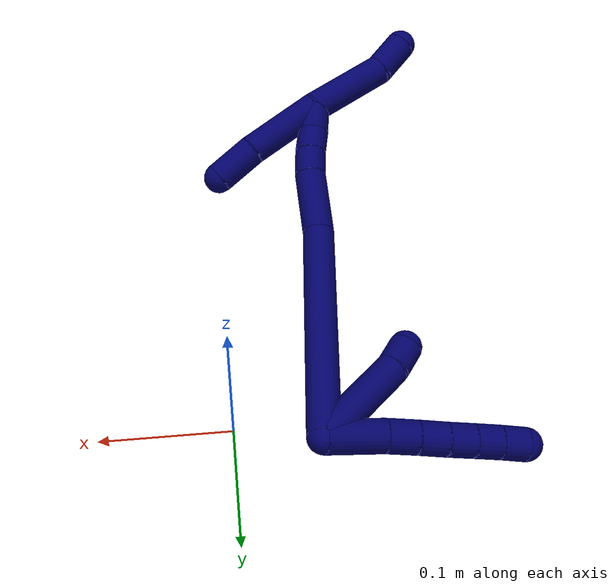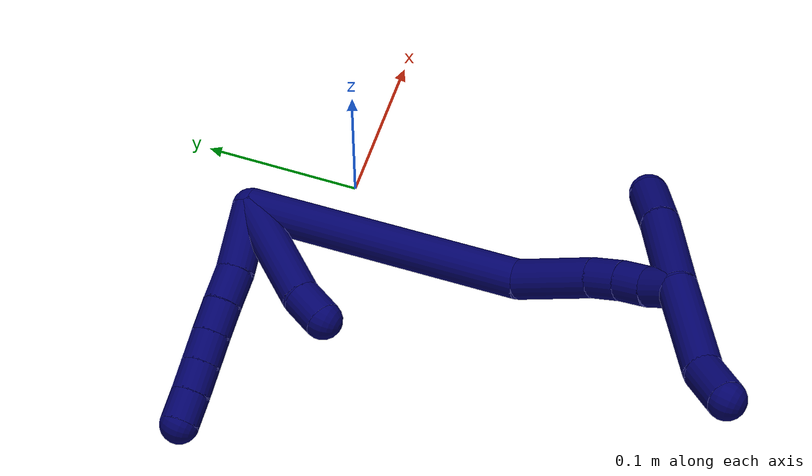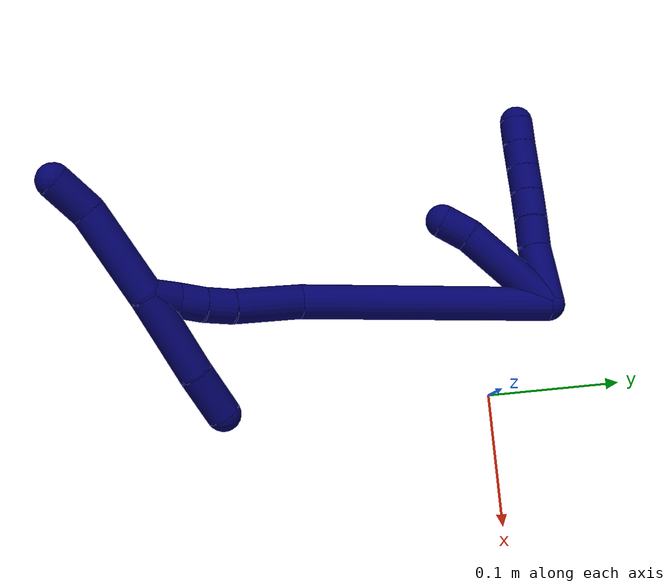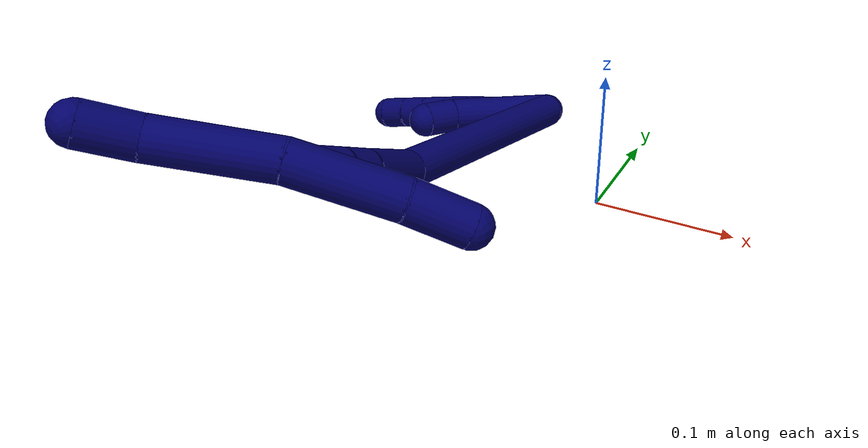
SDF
<sdf version="1.7">
 <world name="default">
  <model name="photoneo_s_sensor">
   <static>1</static>
   <pose>0 0 2 1.57079 1.57079 3.14159</pose>
   <link name="link">
    <inertial><mass>0.1</mass></inertial>
    <sensor name="sensor" type="depth">
     <update_rate>30</update_rate>
     <camera>
      <horizontal_fov>1.22</horizontal_fov>
      <image><width>1920</width><height>1200</height><format>B8G8R8</format></image>
      <clip><near>0.1</near><far>4</far></clip>
      <depth_camera><output>points</output></depth_camera>
     </camera>
     <plugin name="camera_plugin" filename="libgazebo_ros_depth_camera.so">
      <baseline>0.2</baseline>
      <alwaysOn>1</alwaysOn>
      <updateRate>0.0</updateRate>
      <cameraName>camera_ir</cameraName>
      <imageTopicName>/camera/color/image_raw</imageTopicName>
      <cameraInfoTopicName>/camera/color/camera_info</cameraInfoTopicName>
      <depthImageTopicName>/camera/depth/image_raw</depthImageTopicName>
      <depthImageCameraInfoTopicName>/camera/depth/camera_info</depthImageCameraInfoTopicName>
      <pointCloudTopicName>/camera/depth/points</pointCloudTopicName>
      <frameName>fr_optical</frameName>
      <pointCloudCutoff>0.1</pointCloudCutoff>
      <pointCloudCutoffMax>2.0</pointCloudCutoffMax>
      <distortionK1>0</distortionK1>
      <distortionK2>0</distortionK2>
      <distortionK3>0</distortionK3>
      <distortionT1>0</distortionT1>
      <distortionT2>0</distortionT2>
      <CxPrime>0</CxPrime>
      <Cx>0</Cx>
      <Cy>0</Cy>
      <focalLength>0</focalLength>
      <hackBaseline>0</hackBaseline>
     </plugin>
    </sensor>
   </link>
  </model>
  <model name="bin">
   <static>1</static>
   <link name="bottom">
    <collision name="collision-bottom">
     <pose>0 0 -0.01 0 -0 0</pose>
     <geometry><box><size>0.8 0.6 0.02</size></box></geometry>
     <surface>
      <friction><ode><mu>100</mu><mu2>100</mu2></ode></friction>
      <contact><collide_bitmask>65535</collide_bitmask></contact>
     </surface>
    </collision>
   </link>
   <link name="west_wall">
    <collision name="collision-west_wall">
     <pose>-0.41 0 0.1 0 -0 0</pose>
     <geometry><box><size>0.02 0.6 0.2</size></box></geometry>
     <surface>
      <friction><ode><mu>100</mu><mu2>100</mu2></ode></friction>
      <contact><collide_bitmask>65535</collide_bitmask></contact>
     </surface>
    </collision>
   </link>
   <link name="east_wall">
    <collision name="collision-east_wall">
     <pose>0.41 0 0.1 0 -0 0</pose>
     <geometry><box><size>0.02 0.6 0.2</size></box></geometry>
     <surface>
      <friction><ode><mu>100</mu><mu2>100</mu2></ode></friction>
      <contact><collide_bitmask>65535</collide_bitmask></contact>
     </surface>
    </collision>
   </link>
   <link name="south_wall">
    <collision name="collision-south_wall">
     <pose>0 -0.31 0.1 0 -0 0</pose>
     <geometry><box><size>0.8 0.02 0.2</size></box></geometry>
     <surface>
      <friction><ode><mu>100</mu><mu2>100</mu2></ode></friction>
      <contact><collide_bitmask>65535</collide_bitmask></contact>
     </surface>
    </collision>
   </link>
   <link name="north_wall">
    <collision name="collision-north_wall">
     <pose>0 0.31 0.1 0 -0 0</pose>
     <geometry><box><size>0.8 0.02 0.2</size></box></geometry>
     <surface>
      <friction><ode><mu>100</mu><mu2>100</mu2></ode></friction>
      <contact><collide_bitmask>65535</collide_bitmask></contact>
     </surface>
    </collision>
   </link>
  </model>
  <model name="7">
   <static>0</static>
   <link name="7">
    <collision name="collision-cylinder-e_1_2_8">
     <pose>0.01744 0.012623 0.006087 -1.12146 0.893894 -0.584716</pose>
     <geometry><cylinder><radius>0.0125</radius><length>0.044746</length></cylinder></geometry>
     <surface>
      <friction><ode><mu>1.16</mu><mu2>1.16</mu2><slip1>0</slip1><slip2>0</slip2></ode></friction>
      <contact><ode><kp>1e+06</kp><kd>1</kd><max_vel>0</max_vel><min_depth>0.001</min_depth></ode></contact>
     </surface>
    </collision>
    <visual name="visual-cylinder-e_1_2_8">
     <pose>0.01744 0.012623 0.006087 -1.12146 0.893894 -0.584716</pose>
     <geometry><cylinder><radius>0.0125</radius><length>0.044746</length></cylinder></geometry>
     <material><ambient>0.003922 0 0.403922 1</ambient></material>
    </visual>
    <collision name="collision-cylinder-e_2_8_9">
     <pose>0.044285 0.031587 0.014042 -1.2843 0.958133 -0.741057</pose>
     <geometry><cylinder><radius>0.0125</radius><length>0.022991</length></cylinder></geometry>
     <surface>
      <friction><ode><mu>1.16</mu><mu2>1.16</mu2><slip1>0</slip1><slip2>0</slip2></ode></friction>
      <contact><ode><kp>1e+06</kp><kd>1</kd><max_vel>0</max_vel><min_depth>0.001</min_depth></ode></contact>
     </surface>
    </collision>
    <visual name="visual-cylinder-e_2_8_9">
     <pose>0.044285 0.031587 0.014042 -1.2843 0.958133 -0.741057</pose>
     <geometry><cylinder><radius>0.0125</radius><length>0.022991</length></cylinder></geometry>
     <material><ambient>0.003922 0 0.403922 1</ambient></material>
    </visual>
    <collision name="collision-cylinder-e_3_9_10">
     <pose>0.062249 0.044273 0.01784 -1.27563 0.911653 -0.697052</pose>
     <geometry><cylinder><radius>0.0125</radius><length>0.021655</length></cylinder></geometry>
     <surface>
      <friction><ode><mu>1.16</mu><mu2>1.16</mu2><slip1>0</slip1><slip2>0</slip2></ode></friction>
      <contact><ode><kp>1e+06</kp><kd>1</kd><max_vel>0</max_vel><min_depth>0.001</min_depth></ode></contact>
     </surface>
    </collision>
    <visual name="visual-cylinder-e_3_9_10">
     <pose>0.062249 0.044273 0.01784 -1.27563 0.911653 -0.697052</pose>
     <geometry><cylinder><radius>0.0125</radius><length>0.021655</length></cylinder></geometry>
     <material><ambient>0.003922 0 0.403922 1</ambient></material>
    </visual>
    <collision name="collision-cylinder-e_4_10_11">
     <pose>0.07886 0.05653 0.021773 -1.24404 0.911253 -0.675702</pose>
     <geometry><cylinder><radius>0.0125</radius><length>0.020377</length></cylinder></geometry>
     <surface>
      <friction><ode><mu>1.16</mu><mu2>1.16</mu2><slip1>0</slip1><slip2>0</slip2></ode></friction>
      <contact><ode><kp>1e+06</kp><kd>1</kd><max_vel>0</max_vel><min_depth>0.001</min_depth></ode></contact>
     </surface>
    </collision>
    <visual name="visual-cylinder-e_4_10_11">
     <pose>0.07886 0.05653 0.021773 -1.24404 0.911253 -0.675702</pose>
     <geometry><cylinder><radius>0.0125</radius><length>0.020377</length></cylinder></geometry>
     <material><ambient>0.003922 0 0.403922 1</ambient></material>
    </visual>
    <collision name="collision-cylinder-e_5_11_12">
     <pose>0.09484 0.068304 0.025734 -1.24851 0.908699 -0.676631</pose>
     <geometry><cylinder><radius>0.0125</radius><length>0.020104</length></cylinder></geometry>
     <surface>
      <friction><ode><mu>1.16</mu><mu2>1.16</mu2><slip1>0</slip1><slip2>0</slip2></ode></friction>
      <contact><ode><kp>1e+06</kp><kd>1</kd><max_vel>0</max_vel><min_depth>0.001</min_depth></ode></contact>
     </surface>
    </collision>
    <visual name="visual-cylinder-e_5_11_12">
     <pose>0.09484 0.068304 0.025734 -1.24851 0.908699 -0.676631</pose>
     <geometry><cylinder><radius>0.0125</radius><length>0.020104</length></cylinder></geometry>
     <material><ambient>0.003922 0 0.403922 1</ambient></material>
    </visual>
    <collision name="collision-cylinder-e_6_12_6">
     <pose>0.110686 0.080135 0.029407 -1.29085 0.905605 -0.702332</pose>
     <geometry><cylinder><radius>0.0125</radius><length>0.020126</length></cylinder></geometry>
     <surface>
      <friction><ode><mu>1.16</mu><mu2>1.16</mu2><slip1>0</slip1><slip2>0</slip2></ode></friction>
      <contact><ode><kp>1e+06</kp><kd>1</kd><max_vel>0</max_vel><min_depth>0.001</min_depth></ode></contact>
     </surface>
    </collision>
    <visual name="visual-cylinder-e_6_12_6">
     <pose>0.110686 0.080135 0.029407 -1.29085 0.905605 -0.702332</pose>
     <geometry><cylinder><radius>0.0125</radius><length>0.020126</length></cylinder></geometry>
     <material><ambient>0.003922 0 0.403922 1</ambient></material>
    </visual>
    <collision name="collision-cylinder-e_1_2_13">
     <pose>0.022565 0.005523 0.030859 -0.177096 0.623886 -0.057242</pose>
     <geometry><cylinder><radius>0.0125</radius><length>0.077251</length></cylinder></geometry>
     <surface>
      <friction><ode><mu>1.16</mu><mu2>1.16</mu2><slip1>0</slip1><slip2>0</slip2></ode></friction>
      <contact><ode><kp>1e+06</kp><kd>1</kd><max_vel>0</max_vel><min_depth>0.001</min_depth></ode></contact>
     </surface>
    </collision>
    <visual name="visual-cylinder-e_1_2_13">
     <pose>0.022565 0.005523 0.030859 -0.177096 0.623886 -0.057242</pose>
     <geometry><cylinder><radius>0.0125</radius><length>0.077251</length></cylinder></geometry>
     <material><ambient>0.003922 0 0.403922 1</ambient></material>
    </visual>
    <collision name="collision-cylinder-e_2_13_5">
     <pose>0.049796 0.011861 0.072059 -0.078674 0.422703 -0.016888</pose>
     <geometry><cylinder><radius>0.0125</radius><length>0.022749</length></cylinder></geometry>
     <surface>
      <friction><ode><mu>1.16</mu><mu2>1.16</mu2><slip1>0</slip1><slip2>0</slip2></ode></friction>
      <contact><ode><kp>1e+06</kp><kd>1</kd><max_vel>0</max_vel><min_depth>0.001</min_depth></ode></contact>
     </surface>
    </collision>
    <visual name="visual-cylinder-e_2_13_5">
     <pose>0.049796 0.011861 0.072059 -0.078674 0.422703 -0.016888</pose>
     <geometry><cylinder><radius>0.0125</radius><length>0.022749</length></cylinder></geometry>
     <material><ambient>0.003922 0 0.403922 1</ambient></material>
    </visual>
    <collision name="collision-cylinder-e_1_2_14">
     <pose>0.000749 -0.020966 0.090038 0.228784 0.008107 0.000931</pose>
     <geometry><cylinder><radius>0.0125</radius><length>0.184899</length></cylinder></geometry>
     <surface>
      <friction><ode><mu>1.16</mu><mu2>1.16</mu2><slip1>0</slip1><slip2>0</slip2></ode></friction>
      <contact><ode><kp>1e+06</kp><kd>1</kd><max_vel>0</max_vel><min_depth>0.001</min_depth></ode></contact>
     </surface>
    </collision>
    <visual name="visual-cylinder-e_1_2_14">
     <pose>0.000749 -0.020966 0.090038 0.228784 0.008107 0.000931</pose>
     <geometry><cylinder><radius>0.0125</radius><length>0.184899</length></cylinder></geometry>
     <material><ambient>0.003922 0 0.403922 1</ambient></material>
    </visual>
    <collision name="collision-cylinder-e_2_14_15">
     <pose>0.002136 -0.05532 0.202352 0.541132 0.024506 0.006797</pose>
     <geometry><cylinder><radius>0.0125</radius><length>0.051996</length></cylinder></geometry>
     <surface>
      <friction><ode><mu>1.16</mu><mu2>1.16</mu2><slip1>0</slip1><slip2>0</slip2></ode></friction>
      <contact><ode><kp>1e+06</kp><kd>1</kd><max_vel>0</max_vel><min_depth>0.001</min_depth></ode></contact>
     </surface>
    </collision>
    <visual name="visual-cylinder-e_2_14_15">
     <pose>0.002136 -0.05532 0.202352 0.541132 0.024506 0.006797</pose>
     <geometry><cylinder><radius>0.0125</radius><length>0.051996</length></cylinder></geometry>
     <material><ambient>0.003922 0 0.403922 1</ambient></material>
    </visual>
    <collision name="collision-cylinder-e_3_15_16">
     <pose>0.004241 -0.073505 0.233847 0.479866 0.140378 0.034396</pose>
     <geometry><cylinder><radius>0.0125</radius><length>0.020989</length></cylinder></geometry>
     <surface>
      <friction><ode><mu>1.16</mu><mu2>1.16</mu2><slip1>0</slip1><slip2>0</slip2></ode></friction>
      <contact><ode><kp>1e+06</kp><kd>1</kd><max_vel>0</max_vel><min_depth>0.001</min_depth></ode></contact>
     </surface>
    </collision>
    <visual name="visual-cylinder-e_3_15_16">
     <pose>0.004241 -0.073505 0.233847 0.479866 0.140378 0.034396</pose>
     <geometry><cylinder><radius>0.0125</radius><length>0.020989</length></cylinder></geometry>
     <material><ambient>0.003922 0 0.403922 1</ambient></material>
    </visual>
    <collision name="collision-cylinder-e_4_16_17">
     <pose>0.007975 -0.082233 0.252045 0.412557 0.22714 0.047727</pose>
     <geometry><cylinder><radius>0.0125</radius><length>0.020122</length></cylinder></geometry>
     <surface>
      <friction><ode><mu>1.16</mu><mu2>1.16</mu2><slip1>0</slip1><slip2>0</slip2></ode></friction>
      <contact><ode><kp>1e+06</kp><kd>1</kd><max_vel>0</max_vel><min_depth>0.001</min_depth></ode></contact>
     </surface>
    </collision>
    <visual name="visual-cylinder-e_4_16_17">
     <pose>0.007975 -0.082233 0.252045 0.412557 0.22714 0.047727</pose>
     <geometry><cylinder><radius>0.0125</radius><length>0.020122</length></cylinder></geometry>
     <material><ambient>0.003922 0 0.403922 1</ambient></material>
    </visual>
    <collision name="collision-cylinder-e_5_17_1">
     <pose>0.012763 -0.092307 0.26979 0.611304 0.231393 0.073308</pose>
     <geometry><cylinder><radius>0.0125</radius><length>0.021993</length></cylinder></geometry>
     <surface>
      <friction><ode><mu>1.16</mu><mu2>1.16</mu2><slip1>0</slip1><slip2>0</slip2></ode></friction>
      <contact><ode><kp>1e+06</kp><kd>1</kd><max_vel>0</max_vel><min_depth>0.001</min_depth></ode></contact>
     </surface>
    </collision>
    <visual name="visual-cylinder-e_5_17_1">
     <pose>0.012763 -0.092307 0.26979 0.611304 0.231393 0.073308</pose>
     <geometry><cylinder><radius>0.0125</radius><length>0.021993</length></cylinder></geometry>
     <material><ambient>0.003922 0 0.403922 1</ambient></material>
    </visual>
    <collision name="collision-cylinder-e_1_1_18">
     <pose>0.042457 -0.094666 0.299421 -0.17938 0.908103 -0.087728</pose>
     <geometry><cylinder><radius>0.0125</radius><length>0.068934</length></cylinder></geometry>
     <surface>
      <friction><ode><mu>1.16</mu><mu2>1.16</mu2><slip1>0</slip1><slip2>0</slip2></ode></friction>
      <contact><ode><kp>1e+06</kp><kd>1</kd><max_vel>0</max_vel><min_depth>0.001</min_depth></ode></contact>
     </surface>
    </collision>
    <visual name="visual-cylinder-e_1_1_18">
     <pose>0.042457 -0.094666 0.299421 -0.17938 0.908103 -0.087728</pose>
     <geometry><cylinder><radius>0.0125</radius><length>0.068934</length></cylinder></geometry>
     <material><ambient>0.003922 0 0.403922 1</ambient></material>
    </visual>
    <collision name="collision-cylinder-e_2_18_4">
     <pose>0.080174 -0.093086 0.331476 0.194416 0.746264 0.076312</pose>
     <geometry><cylinder><radius>0.0125</radius><length>0.031066</length></cylinder></geometry>
     <surface>
      <friction><ode><mu>1.16</mu><mu2>1.16</mu2><slip1>0</slip1><slip2>0</slip2></ode></friction>
      <contact><ode><kp>1e+06</kp><kd>1</kd><max_vel>0</max_vel><min_depth>0.001</min_depth></ode></contact>
     </surface>
    </collision>
    <visual name="visual-cylinder-e_2_18_4">
     <pose>0.080174 -0.093086 0.331476 0.194416 0.746264 0.076312</pose>
     <geometry><cylinder><radius>0.0125</radius><length>0.031066</length></cylinder></geometry>
     <material><ambient>0.003922 0 0.403922 1</ambient></material>
    </visual>
    <collision name="collision-cylinder-e_1_1_19">
     <pose>-0.011703 -0.097868 0.261583 -3.10734 -1.00914 3.07958</pose>
     <geometry><cylinder><radius>0.0125</radius><length>0.063772</length></cylinder></geometry>
     <surface>
      <friction><ode><mu>1.16</mu><mu2>1.16</mu2><slip1>0</slip1><slip2>0</slip2></ode></friction>
      <contact><ode><kp>1e+06</kp><kd>1</kd><max_vel>0</max_vel><min_depth>0.001</min_depth></ode></contact>
     </surface>
    </collision>
    <visual name="visual-cylinder-e_1_1_19">
     <pose>-0.011703 -0.097868 0.261583 -3.10734 -1.00914 3.07958</pose>
     <geometry><cylinder><radius>0.0125</radius><length>0.063772</length></cylinder></geometry>
     <material><ambient>0.003922 0 0.403922 1</ambient></material>
    </visual>
    <collision name="collision-cylinder-e_2_19_3">
     <pose>-0.05388 -0.095037 0.235002 -2.91165 -0.994645 2.72236</pose>
     <geometry><cylinder><radius>0.0125</radius><length>0.036228</length></cylinder></geometry>
     <surface>
      <friction><ode><mu>1.16</mu><mu2>1.16</mu2><slip1>0</slip1><slip2>0</slip2></ode></friction>
      <contact><ode><kp>1e+06</kp><kd>1</kd><max_vel>0</max_vel><min_depth>0.001</min_depth></ode></contact>
     </surface>
    </collision>
    <visual name="visual-cylinder-e_2_19_3">
     <pose>-0.05388 -0.095037 0.235002 -2.91165 -0.994645 2.72236</pose>
     <geometry><cylinder><radius>0.0125</radius><length>0.036228</length></cylinder></geometry>
     <material><ambient>0.003922 0 0.403922 1</ambient></material>
    </visual>
    <collision name="collision-sphere-3">
     <pose>-0.06907 -0.092788 0.225393 0 -0 0</pose>
     <geometry><sphere><radius>0.0125</radius></sphere></geometry>
     <surface>
      <friction><ode><mu>1.16</mu><mu2>1.16</mu2><slip1>0</slip1><slip2>0</slip2></ode></friction>
      <contact><ode><kp>1e+06</kp><kd>1</kd><max_vel>0</max_vel><min_depth>0.001</min_depth></ode></contact>
     </surface>
    </collision>
    <visual name="visual-sphere-3">
     <pose>-0.06907 -0.092788 0.225393 0 -0 0</pose>
     <geometry><sphere><radius>0.0125</radius></sphere></geometry>
     <material><ambient>0.003922 0 0.403922 1</ambient></material>
    </visual>
    <collision name="collision-sphere-19">
     <pose>-0.03869 -0.097287 0.244611 0 -0 0</pose>
     <geometry><sphere><radius>0.0125</radius></sphere></geometry>
     <surface>
      <friction><ode><mu>1.16</mu><mu2>1.16</mu2><slip1>0</slip1><slip2>0</slip2></ode></friction>
      <contact><ode><kp>1e+06</kp><kd>1</kd><max_vel>0</max_vel><min_depth>0.001</min_depth></ode></contact>
     </surface>
    </collision>
    <visual name="visual-sphere-19">
     <pose>-0.03869 -0.097287 0.244611 0 -0 0</pose>
     <geometry><sphere><radius>0.0125</radius></sphere></geometry>
     <material><ambient>0.003922 0 0.403922 1</ambient></material>
    </visual>
    <collision name="collision-sphere-12">
     <pose>0.102768 0.074166 0.027691 0 -0 0</pose>
     <geometry><sphere><radius>0.0125</radius></sphere></geometry>
     <surface>
      <friction><ode><mu>1.16</mu><mu2>1.16</mu2><slip1>0</slip1><slip2>0</slip2></ode></friction>
      <contact><ode><kp>1e+06</kp><kd>1</kd><max_vel>0</max_vel><min_depth>0.001</min_depth></ode></contact>
     </surface>
    </collision>
    <visual name="visual-sphere-12">
     <pose>0.102768 0.074166 0.027691 0 -0 0</pose>
     <geometry><sphere><radius>0.0125</radius></sphere></geometry>
     <material><ambient>0.003922 0 0.403922 1</ambient></material>
    </visual>
    <collision name="collision-sphere-11">
     <pose>0.086912 0.062442 0.023776 0 -0 0</pose>
     <geometry><sphere><radius>0.0125</radius></sphere></geometry>
     <surface>
      <friction><ode><mu>1.16</mu><mu2>1.16</mu2><slip1>0</slip1><slip2>0</slip2></ode></friction>
      <contact><ode><kp>1e+06</kp><kd>1</kd><max_vel>0</max_vel><min_depth>0.001</min_depth></ode></contact>
     </surface>
    </collision>
    <visual name="visual-sphere-11">
     <pose>0.086912 0.062442 0.023776 0 -0 0</pose>
     <geometry><sphere><radius>0.0125</radius></sphere></geometry>
     <material><ambient>0.003922 0 0.403922 1</ambient></material>
    </visual>
    <collision name="collision-sphere-10">
     <pose>0.070809 0.050617 0.019769 0 -0 0</pose>
     <geometry><sphere><radius>0.0125</radius></sphere></geometry>
     <surface>
      <friction><ode><mu>1.16</mu><mu2>1.16</mu2><slip1>0</slip1><slip2>0</slip2></ode></friction>
      <contact><ode><kp>1e+06</kp><kd>1</kd><max_vel>0</max_vel><min_depth>0.001</min_depth></ode></contact>
     </surface>
    </collision>
    <visual name="visual-sphere-10">
     <pose>0.070809 0.050617 0.019769 0 -0 0</pose>
     <geometry><sphere><radius>0.0125</radius></sphere></geometry>
     <material><ambient>0.003922 0 0.403922 1</ambient></material>
    </visual>
    <collision name="collision-sphere-9">
     <pose>0.05369 0.037928 0.015911 0 -0 0</pose>
     <geometry><sphere><radius>0.0125</radius></sphere></geometry>
     <surface>
      <friction><ode><mu>1.16</mu><mu2>1.16</mu2><slip1>0</slip1><slip2>0</slip2></ode></friction>
      <contact><ode><kp>1e+06</kp><kd>1</kd><max_vel>0</max_vel><min_depth>0.001</min_depth></ode></contact>
     </surface>
    </collision>
    <visual name="visual-sphere-9">
     <pose>0.05369 0.037928 0.015911 0 -0 0</pose>
     <geometry><sphere><radius>0.0125</radius></sphere></geometry>
     <material><ambient>0.003922 0 0.403922 1</ambient></material>
    </visual>
    <collision name="collision-sphere-2">
     <geometry><sphere><radius>0.0125</radius></sphere></geometry>
     <surface>
      <friction><ode><mu>1.16</mu><mu2>1.16</mu2><slip1>0</slip1><slip2>0</slip2></ode></friction>
      <contact><ode><kp>1e+06</kp><kd>1</kd><max_vel>0</max_vel><min_depth>0.001</min_depth></ode></contact>
     </surface>
    </collision>
    <visual name="visual-sphere-2">
     <geometry><sphere><radius>0.0125</radius></sphere></geometry>
     <material><ambient>0.003922 0 0.403922 1</ambient></material>
    </visual>
    <collision name="collision-sphere-8">
     <pose>0.03488 0.025246 0.012174 0 -0 0</pose>
     <geometry><sphere><radius>0.0125</radius></sphere></geometry>
     <surface>
      <friction><ode><mu>1.16</mu><mu2>1.16</mu2><slip1>0</slip1><slip2>0</slip2></ode></friction>
      <contact><ode><kp>1e+06</kp><kd>1</kd><max_vel>0</max_vel><min_depth>0.001</min_depth></ode></contact>
     </surface>
    </collision>
    <visual name="visual-sphere-8">
     <pose>0.03488 0.025246 0.012174 0 -0 0</pose>
     <geometry><sphere><radius>0.0125</radius></sphere></geometry>
     <material><ambient>0.003922 0 0.403922 1</ambient></material>
    </visual>
    <collision name="collision-sphere-6">
     <pose>0.118604 0.086104 0.031123 0 -0 0</pose>
     <geometry><sphere><radius>0.0125</radius></sphere></geometry>
     <surface>
      <friction><ode><mu>1.16</mu><mu2>1.16</mu2><slip1>0</slip1><slip2>0</slip2></ode></friction>
      <contact><ode><kp>1e+06</kp><kd>1</kd><max_vel>0</max_vel><min_depth>0.001</min_depth></ode></contact>
     </surface>
    </collision>
    <visual name="visual-sphere-6">
     <pose>0.118604 0.086104 0.031123 0 -0 0</pose>
     <geometry><sphere><radius>0.0125</radius></sphere></geometry>
     <material><ambient>0.003922 0 0.403922 1</ambient></material>
    </visual>
    <collision name="collision-sphere-13">
     <pose>0.04513 0.011046 0.061718 0 -0 0</pose>
     <geometry><sphere><radius>0.0125</radius></sphere></geometry>
     <surface>
      <friction><ode><mu>1.16</mu><mu2>1.16</mu2><slip1>0</slip1><slip2>0</slip2></ode></friction>
      <contact><ode><kp>1e+06</kp><kd>1</kd><max_vel>0</max_vel><min_depth>0.001</min_depth></ode></contact>
     </surface>
    </collision>
    <visual name="visual-sphere-13">
     <pose>0.04513 0.011046 0.061718 0 -0 0</pose>
     <geometry><sphere><radius>0.0125</radius></sphere></geometry>
     <material><ambient>0.003922 0 0.403922 1</ambient></material>
    </visual>
    <collision name="collision-sphere-5">
     <pose>0.054462 0.012676 0.0824 0 -0 0</pose>
     <geometry><sphere><radius>0.0125</radius></sphere></geometry>
     <surface>
      <friction><ode><mu>1.16</mu><mu2>1.16</mu2><slip1>0</slip1><slip2>0</slip2></ode></friction>
      <contact><ode><kp>1e+06</kp><kd>1</kd><max_vel>0</max_vel><min_depth>0.001</min_depth></ode></contact>
     </surface>
    </collision>
    <visual name="visual-sphere-5">
     <pose>0.054462 0.012676 0.0824 0 -0 0</pose>
     <geometry><sphere><radius>0.0125</radius></sphere></geometry>
     <material><ambient>0.003922 0 0.403922 1</ambient></material>
    </visual>
    <collision name="collision-sphere-14">
     <pose>0.001499 -0.041933 0.180075 0 -0 0</pose>
     <geometry><sphere><radius>0.0125</radius></sphere></geometry>
     <surface>
      <friction><ode><mu>1.16</mu><mu2>1.16</mu2><slip1>0</slip1><slip2>0</slip2></ode></friction>
      <contact><ode><kp>1e+06</kp><kd>1</kd><max_vel>0</max_vel><min_depth>0.001</min_depth></ode></contact>
     </surface>
    </collision>
    <visual name="visual-sphere-14">
     <pose>0.001499 -0.041933 0.180075 0 -0 0</pose>
     <geometry><sphere><radius>0.0125</radius></sphere></geometry>
     <material><ambient>0.003922 0 0.403922 1</ambient></material>
    </visual>
    <collision name="collision-sphere-15">
     <pose>0.002773 -0.068708 0.224629 0 -0 0</pose>
     <geometry><sphere><radius>0.0125</radius></sphere></geometry>
     <surface>
      <friction><ode><mu>1.16</mu><mu2>1.16</mu2><slip1>0</slip1><slip2>0</slip2></ode></friction>
      <contact><ode><kp>1e+06</kp><kd>1</kd><max_vel>0</max_vel><min_depth>0.001</min_depth></ode></contact>
     </surface>
    </collision>
    <visual name="visual-sphere-15">
     <pose>0.002773 -0.068708 0.224629 0 -0 0</pose>
     <geometry><sphere><radius>0.0125</radius></sphere></geometry>
     <material><ambient>0.003922 0 0.403922 1</ambient></material>
    </visual>
    <collision name="collision-sphere-16">
     <pose>0.00571 -0.078303 0.243065 0 -0 0</pose>
     <geometry><sphere><radius>0.0125</radius></sphere></geometry>
     <surface>
      <friction><ode><mu>1.16</mu><mu2>1.16</mu2><slip1>0</slip1><slip2>0</slip2></ode></friction>
      <contact><ode><kp>1e+06</kp><kd>1</kd><max_vel>0</max_vel><min_depth>0.001</min_depth></ode></contact>
     </surface>
    </collision>
    <visual name="visual-sphere-16">
     <pose>0.00571 -0.078303 0.243065 0 -0 0</pose>
     <geometry><sphere><radius>0.0125</radius></sphere></geometry>
     <material><ambient>0.003922 0 0.403922 1</ambient></material>
    </visual>
    <collision name="collision-sphere-17">
     <pose>0.010241 -0.086163 0.261025 0 -0 0</pose>
     <geometry><sphere><radius>0.0125</radius></sphere></geometry>
     <surface>
      <friction><ode><mu>1.16</mu><mu2>1.16</mu2><slip1>0</slip1><slip2>0</slip2></ode></friction>
      <contact><ode><kp>1e+06</kp><kd>1</kd><max_vel>0</max_vel><min_depth>0.001</min_depth></ode></contact>
     </surface>
    </collision>
    <visual name="visual-sphere-17">
     <pose>0.010241 -0.086163 0.261025 0 -0 0</pose>
     <geometry><sphere><radius>0.0125</radius></sphere></geometry>
     <material><ambient>0.003922 0 0.403922 1</ambient></material>
    </visual>
    <collision name="collision-sphere-1">
     <pose>0.015285 -0.09845 0.278555 0 -0 0</pose>
     <geometry><sphere><radius>0.0125</radius></sphere></geometry>
     <surface>
      <friction><ode><mu>1.16</mu><mu2>1.16</mu2><slip1>0</slip1><slip2>0</slip2></ode></friction>
      <contact><ode><kp>1e+06</kp><kd>1</kd><max_vel>0</max_vel><min_depth>0.001</min_depth></ode></contact>
     </surface>
    </collision>
    <visual name="visual-sphere-1">
     <pose>0.015285 -0.09845 0.278555 0 -0 0</pose>
     <geometry><sphere><radius>0.0125</radius></sphere></geometry>
     <material><ambient>0.003922 0 0.403922 1</ambient></material>
    </visual>
    <collision name="collision-sphere-18">
     <pose>0.069628 -0.090883 0.320286 0 -0 0</pose>
     <geometry><sphere><radius>0.0125</radius></sphere></geometry>
     <surface>
      <friction><ode><mu>1.16</mu><mu2>1.16</mu2><slip1>0</slip1><slip2>0</slip2></ode></friction>
      <contact><ode><kp>1e+06</kp><kd>1</kd><max_vel>0</max_vel><min_depth>0.001</min_depth></ode></contact>
     </surface>
    </collision>
    <visual name="visual-sphere-18">
     <pose>0.069628 -0.090883 0.320286 0 -0 0</pose>
     <geometry><sphere><radius>0.0125</radius></sphere></geometry>
     <material><ambient>0.003922 0 0.403922 1</ambient></material>
    </visual>
    <collision name="collision-sphere-4">
     <pose>0.090719 -0.09529 0.342666 0 -0 0</pose>
     <geometry><sphere><radius>0.0125</radius></sphere></geometry>
     <surface>
      <friction><ode><mu>1.16</mu><mu2>1.16</mu2><slip1>0</slip1><slip2>0</slip2></ode></friction>
      <contact><ode><kp>1e+06</kp><kd>1</kd><max_vel>0</max_vel><min_depth>0.001</min_depth></ode></contact>
     </surface>
    </collision>
    <visual name="visual-sphere-4">
     <pose>0.090719 -0.09529 0.342666 0 -0 0</pose>
     <geometry><sphere><radius>0.0125</radius></sphere></geometry>
     <material><ambient>0.003922 0 0.403922 1</ambient></material>
    </visual>
    <inertial>
     <pose>0.02035 -0.031998 0.141032 0 -0 0</pose>
     <mass>0.75</mass>
     <inertia>
      <ixx>0.000609</ixx>
      <ixy>0</ixy>
      <ixz>0</ixz>
      <iyy>0.000648</iyy>
      <iyz>0</iyz>
      <izz>9.7e-05</izz>
     </inertia>
    </inertial>
   </link>
   <pose>-0.061316 0.047089 0.043391 -1.62855 -0.419109 2.98806</pose>
  </model>
 </world>
</sdf>
